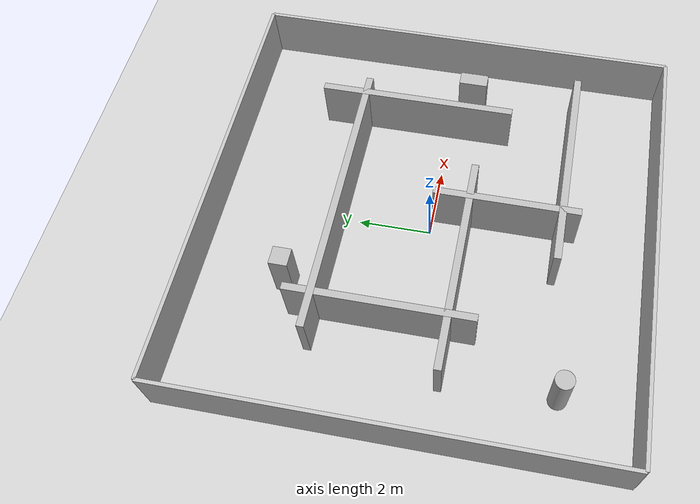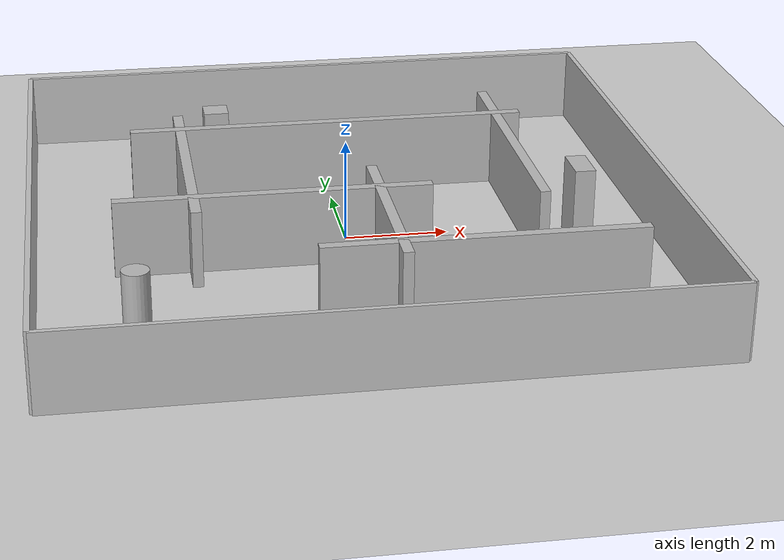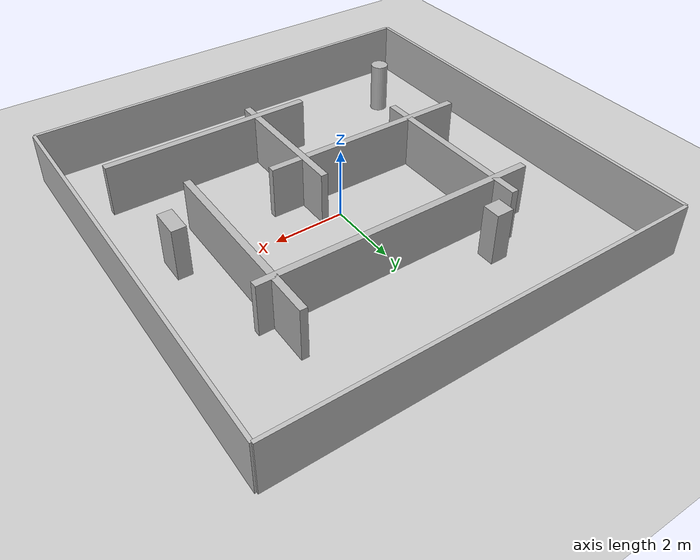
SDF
<?xml version="1.0"?>
<sdf version="1.6">
  <world name="scout_maze_course">
    <include>
      <uri>model://ground_plane</uri>
    </include>
    <include>
      <uri>model://sun</uri>
    </include>
    <physics type='ode'>
      <max_step_size>0.01</max_step_size>
      <real_time_factor>1</real_time_factor>
      <real_time_update_rate>100</real_time_update_rate>
      <gravity>0 0 -9.8</gravity>
    </physics>

    <!-- Boundary walls (12m x 12m area) -->
    <model name="wall_north">
      <static>true</static>
      <pose>0 6 0.75 0 0 0</pose>
      <link name="link">
        <collision name="collision">
          <geometry>
            <box>
              <size>12 0.1 1.5</size>
            </box>
          </geometry>
        </collision>
        <visual name="visual">
          <geometry>
            <box>
              <size>12 0.1 1.5</size>
            </box>
          </geometry>
          <material>
            <ambient>0.75 0.75 0.75 1</ambient>
            <diffuse>0.75 0.75 0.75 1</diffuse>
          </material>
        </visual>
      </link>
    </model>

    <model name="wall_south">
      <static>true</static>
      <pose>0 -6 0.75 0 0 0</pose>
      <link name="link">
        <collision name="collision">
          <geometry>
            <box>
              <size>12 0.1 1.5</size>
            </box>
          </geometry>
        </collision>
        <visual name="visual">
          <geometry>
            <box>
              <size>12 0.1 1.5</size>
            </box>
          </geometry>
          <material>
            <ambient>0.75 0.75 0.75 1</ambient>
            <diffuse>0.75 0.75 0.75 1</diffuse>
          </material>
        </visual>
      </link>
    </model>

    <model name="wall_east">
      <static>true</static>
      <pose>6 0 0.75 0 0 0</pose>
      <link name="link">
        <collision name="collision">
          <geometry>
            <box>
              <size>0.1 12 1.5</size>
            </box>
          </geometry>
        </collision>
        <visual name="visual">
          <geometry>
            <box>
              <size>0.1 12 1.5</size>
            </box>
          </geometry>
          <material>
            <ambient>0.75 0.75 0.75 1</ambient>
            <diffuse>0.75 0.75 0.75 1</diffuse>
          </material>
        </visual>
      </link>
    </model>

    <model name="wall_west">
      <static>true</static>
      <pose>-6 0 0.75 0 0 0</pose>
      <link name="link">
        <collision name="collision">
          <geometry>
            <box>
              <size>0.1 12 1.5</size>
            </box>
          </geometry>
        </collision>
        <visual name="visual">
          <geometry>
            <box>
              <size>0.1 12 1.5</size>
            </box>
          </geometry>
          <material>
            <ambient>0.75 0.75 0.75 1</ambient>
            <diffuse>0.75 0.75 0.75 1</diffuse>
          </material>
        </visual>
      </link>
    </model>

    <!-- Maze walls (long corridors with turns) -->
    <model name="maze_wall_1">
      <static>true</static>
      <pose>0 2.5 0.75 0 0 0</pose>
      <link name="link">
        <collision name="collision">
          <geometry>
            <box>
              <size>8.0 0.2 1.5</size>
            </box>
          </geometry>
        </collision>
        <visual name="visual">
          <geometry>
            <box>
              <size>8.0 0.2 1.5</size>
            </box>
          </geometry>
        </visual>
      </link>
    </model>

    <model name="maze_wall_2">
      <static>true</static>
      <pose>-1.5 -1.0 0.75 0 0 0</pose>
      <link name="link">
        <collision name="collision">
          <geometry>
            <box>
              <size>6.0 0.2 1.5</size>
            </box>
          </geometry>
        </collision>
        <visual name="visual">
          <geometry>
            <box>
              <size>6.0 0.2 1.5</size>
            </box>
          </geometry>
        </visual>
      </link>
    </model>

    <model name="maze_wall_3">
      <static>true</static>
      <pose>2.0 -3.5 0.75 0 0 0</pose>
      <link name="link">
        <collision name="collision">
          <geometry>
            <box>
              <size>6.0 0.2 1.5</size>
            </box>
          </geometry>
        </collision>
        <visual name="visual">
          <geometry>
            <box>
              <size>6.0 0.2 1.5</size>
            </box>
          </geometry>
        </visual>
      </link>
    </model>

    <model name="maze_wall_4">
      <static>true</static>
      <pose>-3.0 0.75 0.75 0 0 1.57079632679</pose>
      <link name="link">
        <collision name="collision">
          <geometry>
            <box>
              <size>5.0 0.2 1.5</size>
            </box>
          </geometry>
        </collision>
        <visual name="visual">
          <geometry>
            <box>
              <size>5.0 0.2 1.5</size>
            </box>
          </geometry>
        </visual>
      </link>
    </model>

    <model name="maze_wall_5">
      <static>true</static>
      <pose>3.5 1.0 0.75 0 0 1.57079632679</pose>
      <link name="link">
        <collision name="collision">
          <geometry>
            <box>
              <size>5.5 0.2 1.5</size>
            </box>
          </geometry>
        </collision>
        <visual name="visual">
          <geometry>
            <box>
              <size>5.5 0.2 1.5</size>
            </box>
          </geometry>
        </visual>
      </link>
    </model>

    <model name="maze_wall_6">
      <static>true</static>
      <pose>0.5 -2.0 0.75 0 0 1.57079632679</pose>
      <link name="link">
        <collision name="collision">
          <geometry>
            <box>
              <size>4.0 0.2 1.5</size>
            </box>
          </geometry>
        </collision>
        <visual name="visual">
          <geometry>
            <box>
              <size>4.0 0.2 1.5</size>
            </box>
          </geometry>
        </visual>
      </link>
    </model>

    <!-- Small obstacles in corridors -->
    <model name="maze_box_1">
      <static>true</static>
      <pose>-2.2 3.5 0.75 0 0 0</pose>
      <link name="link">
        <collision name="collision">
          <geometry>
            <box>
              <size>0.5 0.5 1.5</size>
            </box>
          </geometry>
        </collision>
        <visual name="visual">
          <geometry>
            <box>
              <size>0.5 0.5 1.5</size>
            </box>
          </geometry>
        </visual>
      </link>
    </model>

    <model name="maze_box_2">
      <static>true</static>
      <pose>4.5 -0.5 0.75 0 0 0</pose>
      <link name="link">
        <collision name="collision">
          <geometry>
            <box>
              <size>0.4 0.8 1.5</size>
            </box>
          </geometry>
        </collision>
        <visual name="visual">
          <geometry>
            <box>
              <size>0.4 0.8 1.5</size>
            </box>
          </geometry>
        </visual>
      </link>
    </model>

    <model name="maze_cylinder_1">
      <static>true</static>
      <pose>-4.2 -4.0 0.75 0 0 0</pose>
      <link name="link">
        <collision name="collision">
          <geometry>
            <cylinder>
              <radius>0.25</radius>
              <length>1.5</length>
            </cylinder>
          </geometry>
        </collision>
        <visual name="visual">
          <geometry>
            <cylinder>
              <radius>0.25</radius>
              <length>1.5</length>
            </cylinder>
          </geometry>
        </visual>
      </link>
    </model>
  </world>
</sdf>
